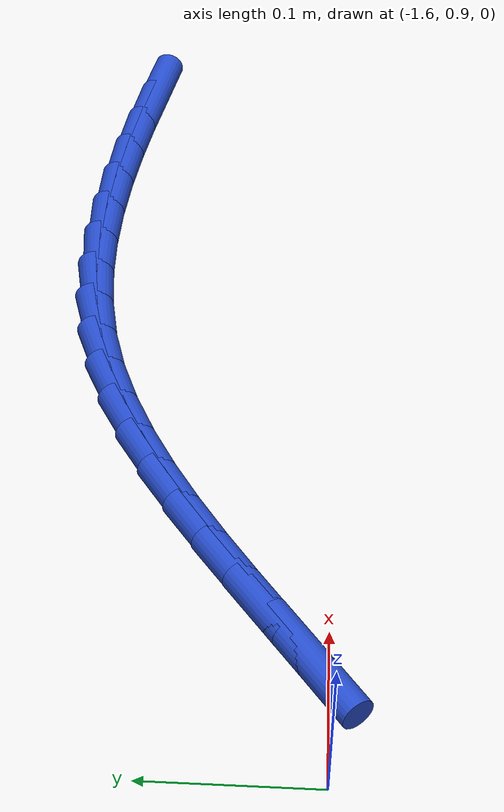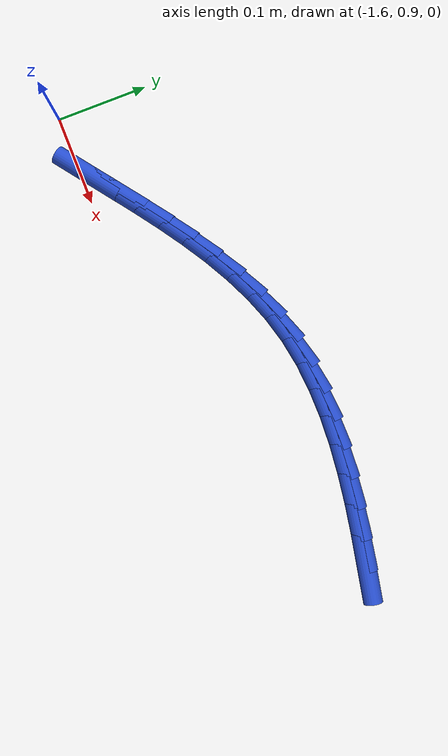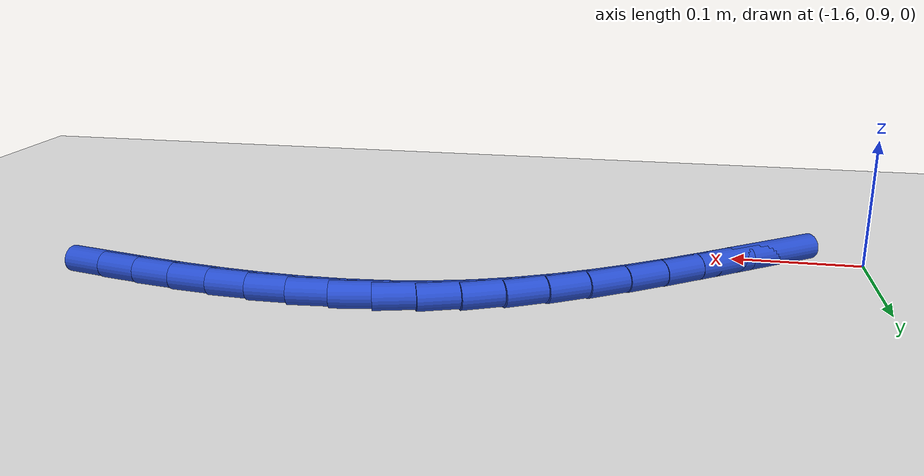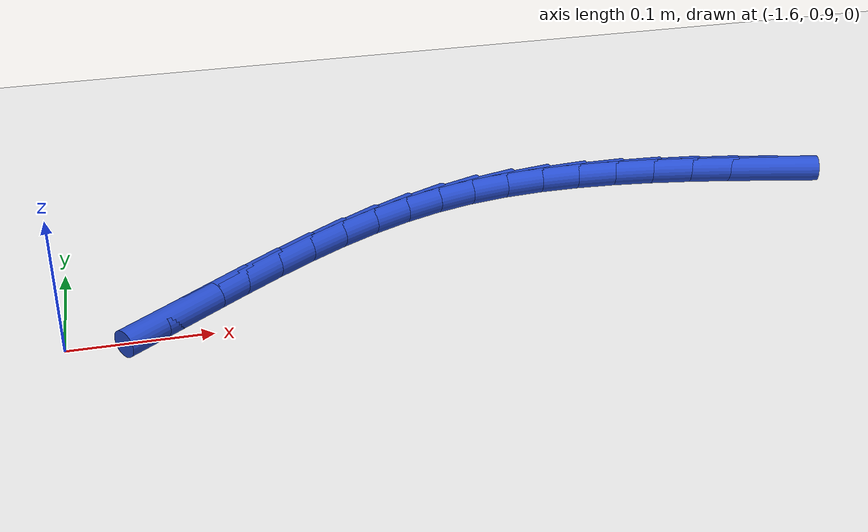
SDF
<sdf version="1.6">
 <world name="default">
  <model name="ground_plane">
   <static>1</static>
   <link name="link">
    <collision name="collision">
     <geometry><plane><normal>0 0 1</normal><size>100 100</size></plane></geometry>
     <surface><friction><ode><mu>100</mu><mu2>50</mu2></ode></friction></surface>
    </collision>
    <visual name="visual">
     <cast_shadows>0</cast_shadows>
     <geometry><plane><normal>0 0 1</normal><size>100 100</size></plane></geometry>
     <material>
      <script><uri>file://media/materials/scripts/gazebo.material</uri><name>Gazebo/WhiteGlow</name></script>
     </material>
    </visual>
   </link>
  </model>
  <model name="line">
   <link name="link_52">
    <pose>-1.0405151461079742 1.028809792622391 0.01 0 1.57 -0.20894333708750915</pose>
    <collision name="collision">
     <geometry><cylinder><radius>0.01</radius><length>0.08</length></cylinder></geometry>
    </collision>
    <visual name="visual">
     <material>
      <script><name>Gazebo/Blue</name><uri>file://media/materials/scripts/gazebo.material</uri></script>
     </material>
     <geometry><cylinder><radius>0.01</radius><length>0.08</length></cylinder></geometry>
    </visual>
   </link>
   <link name="link_53">
    <pose>-1.0719286150847553 1.0354706425713736 0.01 0 1.57 -0.18439022737342584</pose>
    <collision name="collision">
     <geometry><cylinder><radius>0.01</radius><length>0.08</length></cylinder></geometry>
    </collision>
    <visual name="visual">
     <material>
      <script><name>Gazebo/Blue</name><uri>file://media/materials/scripts/gazebo.material</uri></script>
     </material>
     <geometry><cylinder><radius>0.01</radius><length>0.08</length></cylinder></geometry>
    </visual>
   </link>
   <link name="link_54">
    <pose>-1.1033568618398422 1.0413322866925612 0.01 0 1.57 -0.15131714291794712</pose>
    <collision name="collision">
     <geometry><cylinder><radius>0.01</radius><length>0.08</length></cylinder></geometry>
    </collision>
    <visual name="visual">
     <material>
      <script><name>Gazebo/Blue</name><uri>file://media/materials/scripts/gazebo.material</uri></script>
     </material>
     <geometry><cylinder><radius>0.01</radius><length>0.08</length></cylinder></geometry>
    </visual>
   </link>
   <link name="link_55">
    <pose>-1.1347026415098243 1.046111976311271 0.01 0 1.57 -0.1091384651255456</pose>
    <collision name="collision">
     <geometry><cylinder><radius>0.01</radius><length>0.08</length></cylinder></geometry>
    </collision>
    <visual name="visual">
     <material>
      <script><name>Gazebo/Blue</name><uri>file://media/materials/scripts/gazebo.material</uri></script>
     </material>
     <geometry><cylinder><radius>0.01</radius><length>0.08</length></cylinder></geometry>
    </visual>
   </link>
   <link name="link_56">
    <pose>-1.1658687092312914 1.0495269627528183 0.01 0 1.57 -0.05715959908341486</pose>
    <collision name="collision">
     <geometry><cylinder><radius>0.01</radius><length>0.08</length></cylinder></geometry>
    </collision>
    <visual name="visual">
     <material>
      <script><name>Gazebo/Blue</name><uri>file://media/materials/scripts/gazebo.material</uri></script>
     </material>
     <geometry><cylinder><radius>0.01</radius><length>0.08</length></cylinder></geometry>
    </visual>
   </link>
   <link name="link_57">
    <pose>-1.1967578201408324 1.0512944973425193 0.01 0 1.57 0.005330653118221719</pose>
    <collision name="collision">
     <geometry><cylinder><radius>0.01</radius><length>0.08</length></cylinder></geometry>
    </collision>
    <visual name="visual">
     <material>
      <script><name>Gazebo/Blue</name><uri>file://media/materials/scripts/gazebo.material</uri></script>
     </material>
     <geometry><cylinder><radius>0.01</radius><length>0.08</length></cylinder></geometry>
    </visual>
   </link>
   <link name="link_58">
    <pose>-1.2272727293750363 1.0511318314056906 0.01 0 1.57 0.07890842986414</pose>
    <collision name="collision">
     <geometry><cylinder><radius>0.01</radius><length>0.08</length></cylinder></geometry>
    </collision>
    <visual name="visual">
     <material>
      <script><name>Gazebo/Blue</name><uri>file://media/materials/scripts/gazebo.material</uri></script>
     </material>
     <geometry><cylinder><radius>0.01</radius><length>0.08</length></cylinder></geometry>
    </visual>
   </link>
   <link name="link_59">
    <pose>-1.2573161920704927 1.0487562162676474 0.01 0 1.57 0.16379003148570254</pose>
    <collision name="collision">
     <geometry><cylinder><radius>0.01</radius><length>0.08</length></cylinder></geometry>
    </collision>
    <visual name="visual">
     <material>
      <script><name>Gazebo/Blue</name><uri>file://media/materials/scripts/gazebo.material</uri></script>
     </material>
     <geometry><cylinder><radius>0.01</radius><length>0.08</length></cylinder></geometry>
    </visual>
   </link>
   <link name="link_60">
    <pose>-1.2867909633637906 1.0438849032537063 0.01 0 1.57 0.25888215036940543</pose>
    <collision name="collision">
     <geometry><cylinder><radius>0.01</radius><length>0.08</length></cylinder></geometry>
    </collision>
    <visual name="visual">
     <material>
      <script><name>Gazebo/Blue</name><uri>file://media/materials/scripts/gazebo.material</uri></script>
     </material>
     <geometry><cylinder><radius>0.01</radius><length>0.08</length></cylinder></geometry>
    </visual>
   </link>
   <link name="link_61">
    <pose>-1.315604862806702 1.036254264061032 0.01 0 1.57 0.35137744762221534</pose>
    <collision name="collision">
     <geometry><cylinder><radius>0.01</radius><length>0.08</length></cylinder></geometry>
    </collision>
    <visual name="visual">
     <material>
      <script><name>Gazebo/Blue</name><uri>file://media/materials/scripts/gazebo.material</uri></script>
     </material>
     <geometry><cylinder><radius>0.01</radius><length>0.08</length></cylinder></geometry>
    </visual>
   </link>
   <link name="link_62">
    <pose>-1.343754256049594 1.02593497045301 0.01 0 1.57 0.4304428778807871</pose>
    <collision name="collision">
     <geometry><cylinder><radius>0.01</radius><length>0.08</length></cylinder></geometry>
    </collision>
    <visual name="visual">
     <material>
      <script><name>Gazebo/Blue</name><uri>file://media/materials/scripts/gazebo.material</uri></script>
     </material>
     <geometry><cylinder><radius>0.01</radius><length>0.08</length></cylinder></geometry>
    </visual>
   </link>
   <link name="link_63">
    <pose>-1.3713108553698143 1.013282160508175 0.01 0 1.57 0.4957526891505219</pose>
    <collision name="collision">
     <geometry><cylinder><radius>0.01</radius><length>0.08</length></cylinder></geometry>
    </collision>
    <visual name="visual">
     <material>
      <script><name>Gazebo/Blue</name><uri>file://media/materials/scripts/gazebo.material</uri></script>
     </material>
     <geometry><cylinder><radius>0.01</radius><length>0.08</length></cylinder></geometry>
    </visual>
   </link>
   <link name="link_64">
    <pose>-1.398348775982786 0.9986600444423063 0.01 0 1.57 0.5478842681681275</pose>
    <collision name="collision">
     <geometry><cylinder><radius>0.01</radius><length>0.08</length></cylinder></geometry>
    </collision>
    <visual name="visual">
     <material>
      <script><name>Gazebo/Blue</name><uri>file://media/materials/scripts/gazebo.material</uri></script>
     </material>
     <geometry><cylinder><radius>0.01</radius><length>0.08</length></cylinder></geometry>
    </visual>
   </link>
   <link name="link_65">
    <pose>-1.4249421331039358 0.9824328324711838 0.01 0 1.57 0.5876370850014354</pose>
    <collision name="collision">
     <geometry><cylinder><radius>0.01</radius><length>0.08</length></cylinder></geometry>
    </collision>
    <visual name="visual">
     <material>
      <script><name>Gazebo/Blue</name><uri>file://media/materials/scripts/gazebo.material</uri></script>
     </material>
     <geometry><cylinder><radius>0.01</radius><length>0.08</length></cylinder></geometry>
    </visual>
   </link>
   <link name="link_66">
    <pose>-1.4511650419486888 0.9649647348105883 0.01 0 1.57 0.6157860353619142</pose>
    <collision name="collision">
     <geometry><cylinder><radius>0.01</radius><length>0.08</length></cylinder></geometry>
    </collision>
    <visual name="visual">
     <material>
      <script><name>Gazebo/Blue</name><uri>file://media/materials/scripts/gazebo.material</uri></script>
     </material>
     <geometry><cylinder><radius>0.01</radius><length>0.08</length></cylinder></geometry>
    </visual>
   </link>
   <link name="link_67">
    <pose>-1.4770916177324702 0.9466199616762998 0.01 0 1.57 0.6329354108801509</pose>
    <collision name="collision">
     <geometry><cylinder><radius>0.01</radius><length>0.08</length></cylinder></geometry>
    </collision>
    <visual name="visual">
     <material>
      <script><name>Gazebo/Blue</name><uri>file://media/materials/scripts/gazebo.material</uri></script>
     </material>
     <geometry><cylinder><radius>0.01</radius><length>0.08</length></cylinder></geometry>
    </visual>
   </link>
   <link name="link_68">
    <pose>-1.5027959756707054 0.9277627232840985 0.01 0 1.57 0.6394394249734369</pose>
    <collision name="collision">
     <geometry><cylinder><radius>0.01</radius><length>0.08</length></cylinder></geometry>
    </collision>
    <visual name="visual">
     <material>
      <script><name>Gazebo/Blue</name><uri>file://media/materials/scripts/gazebo.material</uri></script>
     </material>
     <geometry><cylinder><radius>0.01</radius><length>0.08</length></cylinder></geometry>
    </visual>
   </link>
   <link name="link_69">
    <pose>-1.5283522309788207 0.9087572298497641 0.01 0 1.57 0.6353606144589441</pose>
    <collision name="collision">
     <geometry><cylinder><radius>0.01</radius><length>0.08</length></cylinder></geometry>
    </collision>
    <visual name="visual">
     <material>
      <script><name>Gazebo/Blue</name><uri>file://media/materials/scripts/gazebo.material</uri></script>
     </material>
     <geometry><cylinder><radius>0.01</radius><length>0.08</length></cylinder></geometry>
    </visual>
   </link>
  </model>
 </world>
</sdf>
